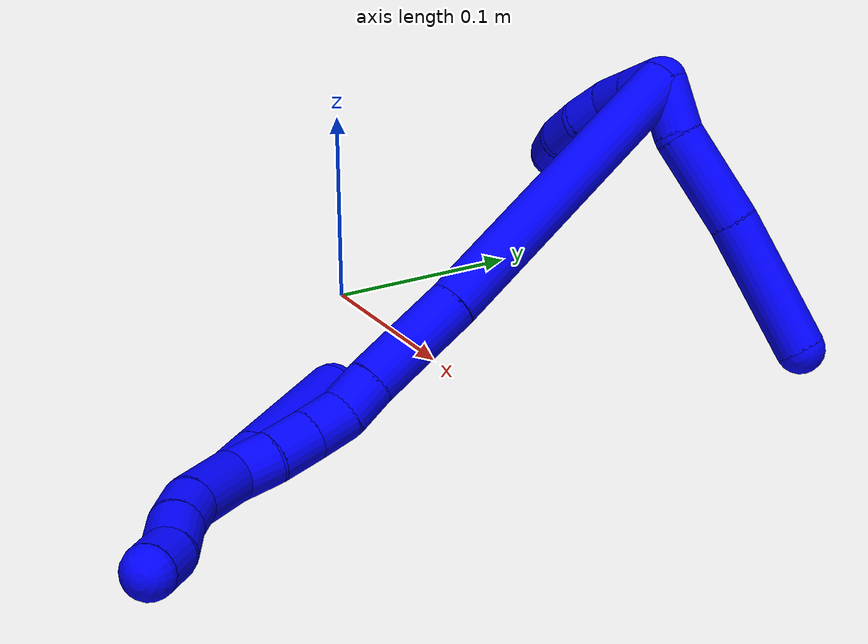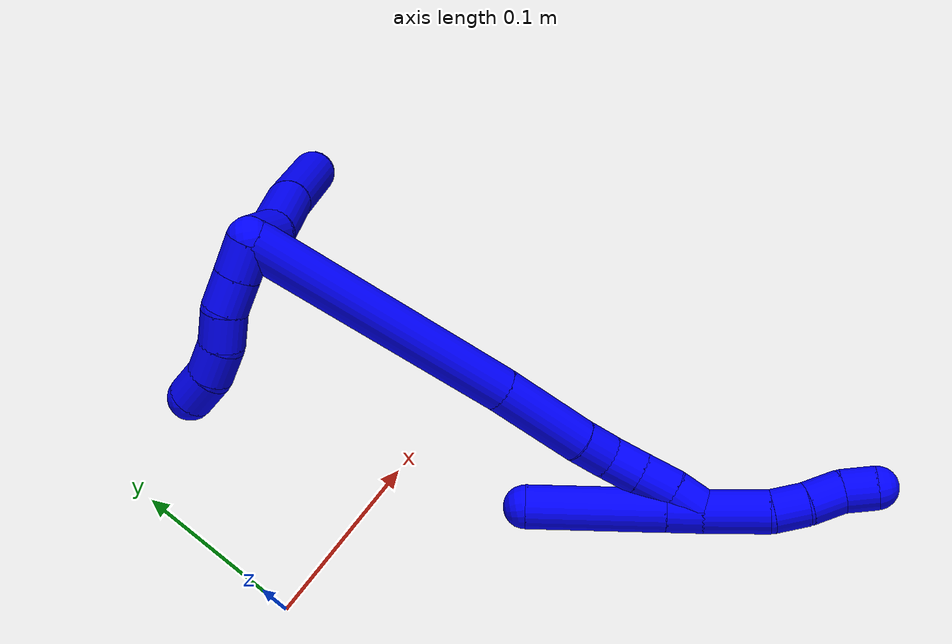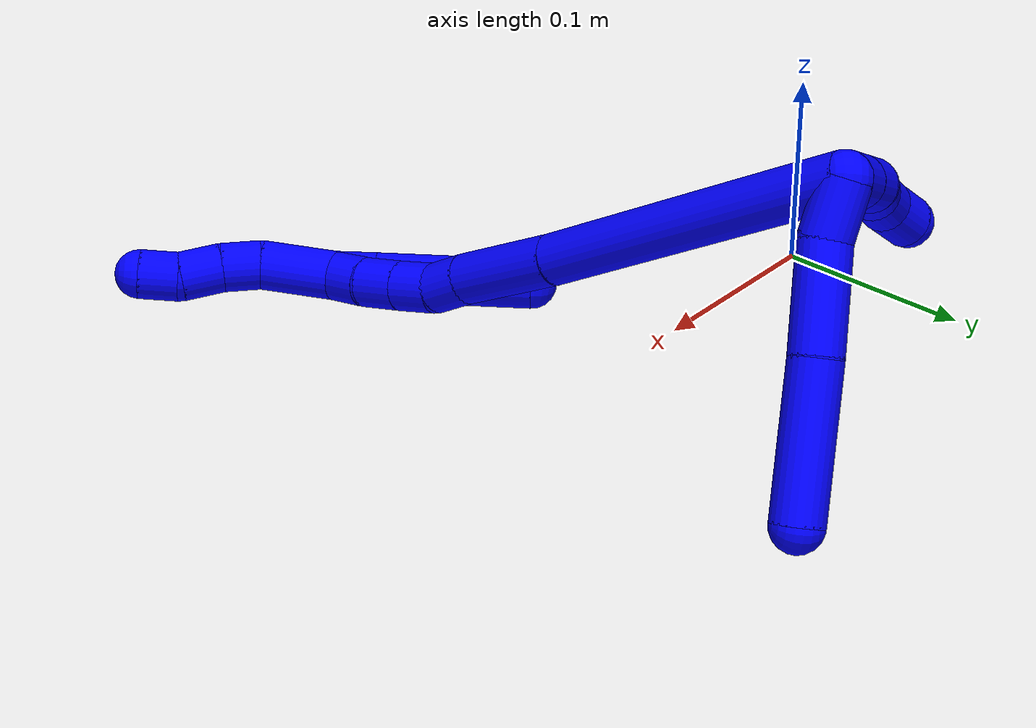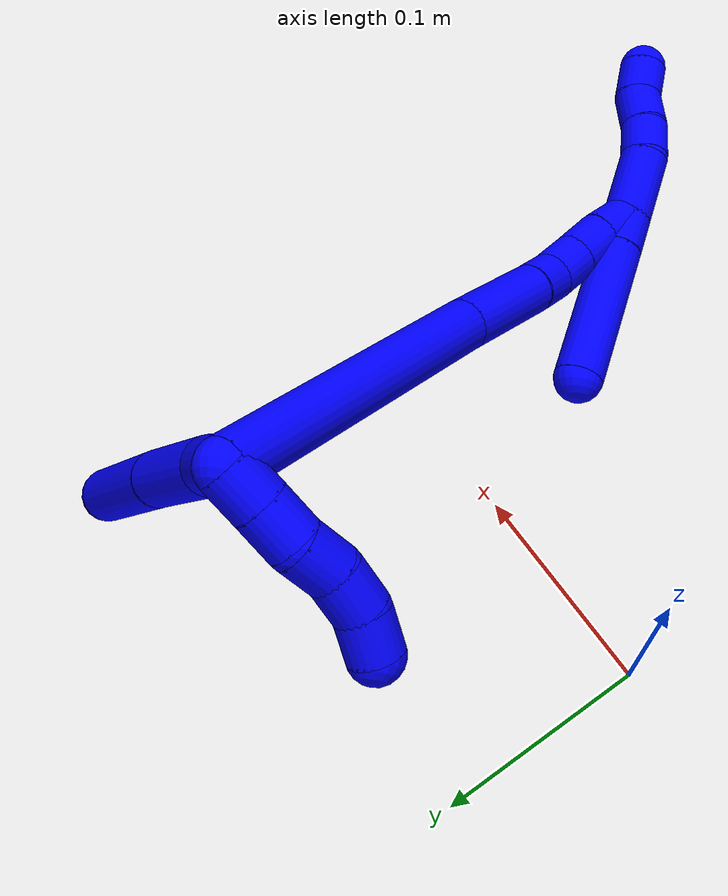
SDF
<sdf version="1.7">
 <world name="default">
  <model name="1">
   <static>0</static>
   <link name="1">
    <collision name="collision-cylinder-e_1_2_8">
     <pose>0.013261 -0.003113 0.002877 0.824707 1.26144 0.618354</pose>
     <geometry><cylinder><radius>0.0125</radius><length>0.027845</length></cylinder></geometry>
     <surface>
      <friction><ode><mu>1.16</mu><mu2>1.16</mu2><slip1>0</slip1><slip2>0</slip2></ode></friction>
      <contact><ode><kp>1e+06</kp><kd>1</kd><max_vel>0</max_vel><min_depth>0.001</min_depth></ode></contact>
     </surface>
    </collision>
    <visual name="visual-cylinder-e_1_2_8">
     <pose>0.013261 -0.003113 0.002877 0.824707 1.26144 0.618354</pose>
     <geometry><cylinder><radius>0.0125</radius><length>0.027845</length></cylinder></geometry>
     <material><ambient>0 0 1 1</ambient></material>
    </visual>
    <collision name="collision-cylinder-e_2_8_9">
     <pose>0.051782 -0.006153 0.006542 -0.09106 1.53947 -0.088254</pose>
     <geometry><cylinder><radius>0.0125</radius><length>0.050542</length></cylinder></geometry>
     <surface>
      <friction><ode><mu>1.16</mu><mu2>1.16</mu2><slip1>0</slip1><slip2>0</slip2></ode></friction>
      <contact><ode><kp>1e+06</kp><kd>1</kd><max_vel>0</max_vel><min_depth>0.001</min_depth></ode></contact>
     </surface>
    </collision>
    <visual name="visual-cylinder-e_2_8_9">
     <pose>0.051782 -0.006153 0.006542 -0.09106 1.53947 -0.088254</pose>
     <geometry><cylinder><radius>0.0125</radius><length>0.050542</length></cylinder></geometry>
     <material><ambient>0 0 1 1</ambient></material>
    </visual>
    <collision name="collision-cylinder-e_3_9_6">
     <pose>0.112717 -0.008671 0.008949 1.01225 1.48542 0.941441</pose>
     <geometry><cylinder><radius>0.0125</radius><length>0.071613</length></cylinder></geometry>
     <surface>
      <friction><ode><mu>1.16</mu><mu2>1.16</mu2><slip1>0</slip1><slip2>0</slip2></ode></friction>
      <contact><ode><kp>1e+06</kp><kd>1</kd><max_vel>0</max_vel><min_depth>0.001</min_depth></ode></contact>
     </surface>
    </collision>
    <visual name="visual-cylinder-e_3_9_6">
     <pose>0.112717 -0.008671 0.008949 1.01225 1.48542 0.941441</pose>
     <geometry><cylinder><radius>0.0125</radius><length>0.071613</length></cylinder></geometry>
     <material><ambient>0 0 1 1</ambient></material>
    </visual>
    <collision name="collision-cylinder-e_1_2_10">
     <pose>-0.000829 -0.00835 -0.00544 2.14825 -0.083003 -0.152934</pose>
     <geometry><cylinder><radius>0.0125</radius><length>0.02</length></cylinder></geometry>
     <surface>
      <friction><ode><mu>1.16</mu><mu2>1.16</mu2><slip1>0</slip1><slip2>0</slip2></ode></friction>
      <contact><ode><kp>1e+06</kp><kd>1</kd><max_vel>0</max_vel><min_depth>0.001</min_depth></ode></contact>
     </surface>
    </collision>
    <visual name="visual-cylinder-e_1_2_10">
     <pose>-0.000829 -0.00835 -0.00544 2.14825 -0.083003 -0.152934</pose>
     <geometry><cylinder><radius>0.0125</radius><length>0.02</length></cylinder></geometry>
     <material><ambient>0 0 1 1</ambient></material>
    </visual>
    <collision name="collision-cylinder-e_2_10_11">
     <pose>-0.002495 -0.024992 -0.016405 2.1585 -0.083751 -0.156207</pose>
     <geometry><cylinder><radius>0.0125</radius><length>0.02</length></cylinder></geometry>
     <surface>
      <friction><ode><mu>1.16</mu><mu2>1.16</mu2><slip1>0</slip1><slip2>0</slip2></ode></friction>
      <contact><ode><kp>1e+06</kp><kd>1</kd><max_vel>0</max_vel><min_depth>0.001</min_depth></ode></contact>
     </surface>
    </collision>
    <visual name="visual-cylinder-e_2_10_11">
     <pose>-0.002495 -0.024992 -0.016405 2.1585 -0.083751 -0.156207</pose>
     <geometry><cylinder><radius>0.0125</radius><length>0.02</length></cylinder></geometry>
     <material><ambient>0 0 1 1</ambient></material>
    </visual>
    <collision name="collision-cylinder-e_3_11_12">
     <pose>-0.002895 -0.042684 -0.025319 1.91683 0.043661 0.062144</pose>
     <geometry><cylinder><radius>0.0125</radius><length>0.02</length></cylinder></geometry>
     <surface>
      <friction><ode><mu>1.16</mu><mu2>1.16</mu2><slip1>0</slip1><slip2>0</slip2></ode></friction>
      <contact><ode><kp>1e+06</kp><kd>1</kd><max_vel>0</max_vel><min_depth>0.001</min_depth></ode></contact>
     </surface>
    </collision>
    <visual name="visual-cylinder-e_3_11_12">
     <pose>-0.002895 -0.042684 -0.025319 1.91683 0.043661 0.062144</pose>
     <geometry><cylinder><radius>0.0125</radius><length>0.02</length></cylinder></geometry>
     <material><ambient>0 0 1 1</ambient></material>
    </visual>
    <collision name="collision-cylinder-e_4_12_13">
     <pose>-0.001266 -0.060259 -0.034339 2.17392 0.119521 0.226738</pose>
     <geometry><cylinder><radius>0.0125</radius><length>0.02</length></cylinder></geometry>
     <surface>
      <friction><ode><mu>1.16</mu><mu2>1.16</mu2><slip1>0</slip1><slip2>0</slip2></ode></friction>
      <contact><ode><kp>1e+06</kp><kd>1</kd><max_vel>0</max_vel><min_depth>0.001</min_depth></ode></contact>
     </surface>
    </collision>
    <visual name="visual-cylinder-e_4_12_13">
     <pose>-0.001266 -0.060259 -0.034339 2.17392 0.119521 0.226738</pose>
     <geometry><cylinder><radius>0.0125</radius><length>0.02</length></cylinder></geometry>
     <material><ambient>0 0 1 1</ambient></material>
    </visual>
    <collision name="collision-cylinder-e_5_13_5">
     <pose>0.002262 -0.074625 -0.04747 2.4516 0.235685 0.636484</pose>
     <geometry><cylinder><radius>0.0125</radius><length>0.02</length></cylinder></geometry>
     <surface>
      <friction><ode><mu>1.16</mu><mu2>1.16</mu2><slip1>0</slip1><slip2>0</slip2></ode></friction>
      <contact><ode><kp>1e+06</kp><kd>1</kd><max_vel>0</max_vel><min_depth>0.001</min_depth></ode></contact>
     </surface>
    </collision>
    <visual name="visual-cylinder-e_5_13_5">
     <pose>0.002262 -0.074625 -0.04747 2.4516 0.235685 0.636484</pose>
     <geometry><cylinder><radius>0.0125</radius><length>0.02</length></cylinder></geometry>
     <material><ambient>0 0 1 1</ambient></material>
    </visual>
    <collision name="collision-cylinder-e_1_2_14">
     <pose>0.015512 -0.059479 0.052406 0.84853 0.193234 0.0875</pose>
     <geometry><cylinder><radius>0.0125</radius><length>0.161552</length></cylinder></geometry>
     <surface>
      <friction><ode><mu>1.16</mu><mu2>1.16</mu2><slip1>0</slip1><slip2>0</slip2></ode></friction>
      <contact><ode><kp>1e+06</kp><kd>1</kd><max_vel>0</max_vel><min_depth>0.001</min_depth></ode></contact>
     </surface>
    </collision>
    <visual name="visual-cylinder-e_1_2_14">
     <pose>0.015512 -0.059479 0.052406 0.84853 0.193234 0.0875</pose>
     <geometry><cylinder><radius>0.0125</radius><length>0.161552</length></cylinder></geometry>
     <material><ambient>0 0 1 1</ambient></material>
    </visual>
    <collision name="collision-cylinder-e_2_14_15">
     <pose>0.034984 -0.139911 0.122508 0.869474 0.143432 0.066695</pose>
     <geometry><cylinder><radius>0.0125</radius><length>0.055419</length></cylinder></geometry>
     <surface>
      <friction><ode><mu>1.16</mu><mu2>1.16</mu2><slip1>0</slip1><slip2>0</slip2></ode></friction>
      <contact><ode><kp>1e+06</kp><kd>1</kd><max_vel>0</max_vel><min_depth>0.001</min_depth></ode></contact>
     </surface>
    </collision>
    <visual name="visual-cylinder-e_2_14_15">
     <pose>0.034984 -0.139911 0.122508 0.869474 0.143432 0.066695</pose>
     <geometry><cylinder><radius>0.0125</radius><length>0.055419</length></cylinder></geometry>
     <material><ambient>0 0 1 1</ambient></material>
    </visual>
    <collision name="collision-cylinder-e_3_15_16">
     <pose>0.041139 -0.168295 0.146836 0.842132 0.216742 0.097373</pose>
     <geometry><cylinder><radius>0.0125</radius><length>0.020399</length></cylinder></geometry>
     <surface>
      <friction><ode><mu>1.16</mu><mu2>1.16</mu2><slip1>0</slip1><slip2>0</slip2></ode></friction>
      <contact><ode><kp>1e+06</kp><kd>1</kd><max_vel>0</max_vel><min_depth>0.001</min_depth></ode></contact>
     </surface>
    </collision>
    <visual name="visual-cylinder-e_3_15_16">
     <pose>0.041139 -0.168295 0.146836 0.842132 0.216742 0.097373</pose>
     <geometry><cylinder><radius>0.0125</radius><length>0.020399</length></cylinder></geometry>
     <material><ambient>0 0 1 1</ambient></material>
    </visual>
    <collision name="collision-cylinder-e_4_16_17">
     <pose>0.042715 -0.182274 0.161284 0.697366 -0.060461 -0.021986</pose>
     <geometry><cylinder><radius>0.0125</radius><length>0.020429</length></cylinder></geometry>
     <surface>
      <friction><ode><mu>1.16</mu><mu2>1.16</mu2><slip1>0</slip1><slip2>0</slip2></ode></friction>
      <contact><ode><kp>1e+06</kp><kd>1</kd><max_vel>0</max_vel><min_depth>0.001</min_depth></ode></contact>
     </surface>
    </collision>
    <visual name="visual-cylinder-e_4_16_17">
     <pose>0.042715 -0.182274 0.161284 0.697366 -0.060461 -0.021986</pose>
     <geometry><cylinder><radius>0.0125</radius><length>0.020429</length></cylinder></geometry>
     <material><ambient>0 0 1 1</ambient></material>
    </visual>
    <collision name="collision-cylinder-e_5_17_18">
     <pose>0.041174 -0.195551 0.177495 0.675667 -0.085612 -0.030092</pose>
     <geometry><cylinder><radius>0.0125</radius><length>0.021599</length></cylinder></geometry>
     <surface>
      <friction><ode><mu>1.16</mu><mu2>1.16</mu2><slip1>0</slip1><slip2>0</slip2></ode></friction>
      <contact><ode><kp>1e+06</kp><kd>1</kd><max_vel>0</max_vel><min_depth>0.001</min_depth></ode></contact>
     </surface>
    </collision>
    <visual name="visual-cylinder-e_5_17_18">
     <pose>0.041174 -0.195551 0.177495 0.675667 -0.085612 -0.030092</pose>
     <geometry><cylinder><radius>0.0125</radius><length>0.021599</length></cylinder></geometry>
     <material><ambient>0 0 1 1</ambient></material>
    </visual>
    <collision name="collision-cylinder-e_6_18_1">
     <pose>0.038522 -0.209396 0.193136 0.776357 -0.168634 -0.069095</pose>
     <geometry><cylinder><radius>0.0125</radius><length>0.020601</length></cylinder></geometry>
     <surface>
      <friction><ode><mu>1.16</mu><mu2>1.16</mu2><slip1>0</slip1><slip2>0</slip2></ode></friction>
      <contact><ode><kp>1e+06</kp><kd>1</kd><max_vel>0</max_vel><min_depth>0.001</min_depth></ode></contact>
     </surface>
    </collision>
    <visual name="visual-cylinder-e_6_18_1">
     <pose>0.038522 -0.209396 0.193136 0.776357 -0.168634 -0.069095</pose>
     <geometry><cylinder><radius>0.0125</radius><length>0.020601</length></cylinder></geometry>
     <material><ambient>0 0 1 1</ambient></material>
    </visual>
    <collision name="collision-cylinder-e_1_1_19">
     <pose>0.036603 -0.214112 0.190104 -2.91226 -0.017981 0.155813</pose>
     <geometry><cylinder><radius>0.0125</radius><length>0.02111</length></cylinder></geometry>
     <surface>
      <friction><ode><mu>1.16</mu><mu2>1.16</mu2><slip1>0</slip1><slip2>0</slip2></ode></friction>
      <contact><ode><kp>1e+06</kp><kd>1</kd><max_vel>0</max_vel><min_depth>0.001</min_depth></ode></contact>
     </surface>
    </collision>
    <visual name="visual-cylinder-e_1_1_19">
     <pose>0.036603 -0.214112 0.190104 -2.91226 -0.017981 0.155813</pose>
     <geometry><cylinder><radius>0.0125</radius><length>0.02111</length></cylinder></geometry>
     <material><ambient>0 0 1 1</ambient></material>
    </visual>
    <collision name="collision-cylinder-e_2_19_4">
     <pose>0.036031 -0.202897 0.141382 -2.91617 -0.009689 0.08555</pose>
     <geometry><cylinder><radius>0.0125</radius><length>0.07889</length></cylinder></geometry>
     <surface>
      <friction><ode><mu>1.16</mu><mu2>1.16</mu2><slip1>0</slip1><slip2>0</slip2></ode></friction>
      <contact><ode><kp>1e+06</kp><kd>1</kd><max_vel>0</max_vel><min_depth>0.001</min_depth></ode></contact>
     </surface>
    </collision>
    <visual name="visual-cylinder-e_2_19_4">
     <pose>0.036031 -0.202897 0.141382 -2.91617 -0.009689 0.08555</pose>
     <geometry><cylinder><radius>0.0125</radius><length>0.07889</length></cylinder></geometry>
     <material><ambient>0 0 1 1</ambient></material>
    </visual>
    <collision name="collision-cylinder-e_1_1_20">
     <pose>0.035162 -0.219349 0.219166 0.149931 -0.08565 -0.006437</pose>
     <geometry><cylinder><radius>0.0125</radius><length>0.038136</length></cylinder></geometry>
     <surface>
      <friction><ode><mu>1.16</mu><mu2>1.16</mu2><slip1>0</slip1><slip2>0</slip2></ode></friction>
      <contact><ode><kp>1e+06</kp><kd>1</kd><max_vel>0</max_vel><min_depth>0.001</min_depth></ode></contact>
     </surface>
    </collision>
    <visual name="visual-cylinder-e_1_1_20">
     <pose>0.035162 -0.219349 0.219166 0.149931 -0.08565 -0.006437</pose>
     <geometry><cylinder><radius>0.0125</radius><length>0.038136</length></cylinder></geometry>
     <material><ambient>0 0 1 1</ambient></material>
    </visual>
    <collision name="collision-cylinder-e_2_20_21">
     <pose>0.034996 -0.222496 0.247913 0.031114 0.146009 0.002276</pose>
     <geometry><cylinder><radius>0.0125</radius><length>0.020148</length></cylinder></geometry>
     <surface>
      <friction><ode><mu>1.16</mu><mu2>1.16</mu2><slip1>0</slip1><slip2>0</slip2></ode></friction>
      <contact><ode><kp>1e+06</kp><kd>1</kd><max_vel>0</max_vel><min_depth>0.001</min_depth></ode></contact>
     </surface>
    </collision>
    <visual name="visual-cylinder-e_2_20_21">
     <pose>0.034996 -0.222496 0.247913 0.031114 0.146009 0.002276</pose>
     <geometry><cylinder><radius>0.0125</radius><length>0.020148</length></cylinder></geometry>
     <material><ambient>0 0 1 1</ambient></material>
    </visual>
    <collision name="collision-cylinder-e_3_21_22">
     <pose>0.039646 -0.222348 0.268209 -0.044325 0.298632 -0.006669</pose>
     <geometry><cylinder><radius>0.0125</radius><length>0.021647</length></cylinder></geometry>
     <surface>
      <friction><ode><mu>1.16</mu><mu2>1.16</mu2><slip1>0</slip1><slip2>0</slip2></ode></friction>
      <contact><ode><kp>1e+06</kp><kd>1</kd><max_vel>0</max_vel><min_depth>0.001</min_depth></ode></contact>
     </surface>
    </collision>
    <visual name="visual-cylinder-e_3_21_22">
     <pose>0.039646 -0.222348 0.268209 -0.044325 0.298632 -0.006669</pose>
     <geometry><cylinder><radius>0.0125</radius><length>0.021647</length></cylinder></geometry>
     <material><ambient>0 0 1 1</ambient></material>
    </visual>
    <collision name="collision-cylinder-e_4_22_3">
     <pose>0.042789 -0.222651 0.288549 0.075906 -0.004134 -0.000157</pose>
     <geometry><cylinder><radius>0.0125</radius><length>0.020069</length></cylinder></geometry>
     <surface>
      <friction><ode><mu>1.16</mu><mu2>1.16</mu2><slip1>0</slip1><slip2>0</slip2></ode></friction>
      <contact><ode><kp>1e+06</kp><kd>1</kd><max_vel>0</max_vel><min_depth>0.001</min_depth></ode></contact>
     </surface>
    </collision>
    <visual name="visual-cylinder-e_4_22_3">
     <pose>0.042789 -0.222651 0.288549 0.075906 -0.004134 -0.000157</pose>
     <geometry><cylinder><radius>0.0125</radius><length>0.020069</length></cylinder></geometry>
     <material><ambient>0 0 1 1</ambient></material>
    </visual>
    <collision name="collision-sphere-3">
     <pose>0.042748 -0.223412 0.298555 0 -0 0</pose>
     <geometry><sphere><radius>0.0125</radius></sphere></geometry>
     <surface>
      <friction><ode><mu>1.16</mu><mu2>1.16</mu2><slip1>0</slip1><slip2>0</slip2></ode></friction>
      <contact><ode><kp>1e+06</kp><kd>1</kd><max_vel>0</max_vel><min_depth>0.001</min_depth></ode></contact>
     </surface>
    </collision>
    <visual name="visual-sphere-3">
     <pose>0.042748 -0.223412 0.298555 0 -0 0</pose>
     <geometry><sphere><radius>0.0125</radius></sphere></geometry>
     <material><ambient>0 0 1 1</ambient></material>
    </visual>
    <collision name="collision-sphere-22">
     <pose>0.042831 -0.22189 0.278544 0 -0 0</pose>
     <geometry><sphere><radius>0.0125</radius></sphere></geometry>
     <surface>
      <friction><ode><mu>1.16</mu><mu2>1.16</mu2><slip1>0</slip1><slip2>0</slip2></ode></friction>
      <contact><ode><kp>1e+06</kp><kd>1</kd><max_vel>0</max_vel><min_depth>0.001</min_depth></ode></contact>
     </surface>
    </collision>
    <visual name="visual-sphere-22">
     <pose>0.042831 -0.22189 0.278544 0 -0 0</pose>
     <geometry><sphere><radius>0.0125</radius></sphere></geometry>
     <material><ambient>0 0 1 1</ambient></material>
    </visual>
    <collision name="collision-sphere-21">
     <pose>0.036462 -0.222806 0.257875 0 -0 0</pose>
     <geometry><sphere><radius>0.0125</radius></sphere></geometry>
     <surface>
      <friction><ode><mu>1.16</mu><mu2>1.16</mu2><slip1>0</slip1><slip2>0</slip2></ode></friction>
      <contact><ode><kp>1e+06</kp><kd>1</kd><max_vel>0</max_vel><min_depth>0.001</min_depth></ode></contact>
     </surface>
    </collision>
    <visual name="visual-sphere-21">
     <pose>0.036462 -0.222806 0.257875 0 -0 0</pose>
     <geometry><sphere><radius>0.0125</radius></sphere></geometry>
     <material><ambient>0 0 1 1</ambient></material>
    </visual>
    <collision name="collision-sphere-20">
     <pose>0.033531 -0.222186 0.237951 0 -0 0</pose>
     <geometry><sphere><radius>0.0125</radius></sphere></geometry>
     <surface>
      <friction><ode><mu>1.16</mu><mu2>1.16</mu2><slip1>0</slip1><slip2>0</slip2></ode></friction>
      <contact><ode><kp>1e+06</kp><kd>1</kd><max_vel>0</max_vel><min_depth>0.001</min_depth></ode></contact>
     </surface>
    </collision>
    <visual name="visual-sphere-20">
     <pose>0.033531 -0.222186 0.237951 0 -0 0</pose>
     <geometry><sphere><radius>0.0125</radius></sphere></geometry>
     <material><ambient>0 0 1 1</ambient></material>
    </visual>
    <collision name="collision-sphere-4">
     <pose>0.035649 -0.19408 0.102937 0 -0 0</pose>
     <geometry><sphere><radius>0.0125</radius></sphere></geometry>
     <surface>
      <friction><ode><mu>1.16</mu><mu2>1.16</mu2><slip1>0</slip1><slip2>0</slip2></ode></friction>
      <contact><ode><kp>1e+06</kp><kd>1</kd><max_vel>0</max_vel><min_depth>0.001</min_depth></ode></contact>
     </surface>
    </collision>
    <visual name="visual-sphere-4">
     <pose>0.035649 -0.19408 0.102937 0 -0 0</pose>
     <geometry><sphere><radius>0.0125</radius></sphere></geometry>
     <material><ambient>0 0 1 1</ambient></material>
    </visual>
    <collision name="collision-sphere-11">
     <pose>-0.003331 -0.033285 -0.02193 0 -0 0</pose>
     <geometry><sphere><radius>0.0125</radius></sphere></geometry>
     <surface>
      <friction><ode><mu>1.16</mu><mu2>1.16</mu2><slip1>0</slip1><slip2>0</slip2></ode></friction>
      <contact><ode><kp>1e+06</kp><kd>1</kd><max_vel>0</max_vel><min_depth>0.001</min_depth></ode></contact>
     </surface>
    </collision>
    <visual name="visual-sphere-11">
     <pose>-0.003331 -0.033285 -0.02193 0 -0 0</pose>
     <geometry><sphere><radius>0.0125</radius></sphere></geometry>
     <material><ambient>0 0 1 1</ambient></material>
    </visual>
    <collision name="collision-sphere-10">
     <pose>-0.001658 -0.016699 -0.01088 0 -0 0</pose>
     <geometry><sphere><radius>0.0125</radius></sphere></geometry>
     <surface>
      <friction><ode><mu>1.16</mu><mu2>1.16</mu2><slip1>0</slip1><slip2>0</slip2></ode></friction>
      <contact><ode><kp>1e+06</kp><kd>1</kd><max_vel>0</max_vel><min_depth>0.001</min_depth></ode></contact>
     </surface>
    </collision>
    <visual name="visual-sphere-10">
     <pose>-0.001658 -0.016699 -0.01088 0 -0 0</pose>
     <geometry><sphere><radius>0.0125</radius></sphere></geometry>
     <material><ambient>0 0 1 1</ambient></material>
    </visual>
    <collision name="collision-sphere-6">
     <pose>0.148393 -0.01126 0.010567 0 -0 0</pose>
     <geometry><sphere><radius>0.0125</radius></sphere></geometry>
     <surface>
      <friction><ode><mu>1.16</mu><mu2>1.16</mu2><slip1>0</slip1><slip2>0</slip2></ode></friction>
      <contact><ode><kp>1e+06</kp><kd>1</kd><max_vel>0</max_vel><min_depth>0.001</min_depth></ode></contact>
     </surface>
    </collision>
    <visual name="visual-sphere-6">
     <pose>0.148393 -0.01126 0.010567 0 -0 0</pose>
     <geometry><sphere><radius>0.0125</radius></sphere></geometry>
     <material><ambient>0 0 1 1</ambient></material>
    </visual>
    <collision name="collision-sphere-9">
     <pose>0.07704 -0.006081 0.007331 0 -0 0</pose>
     <geometry><sphere><radius>0.0125</radius></sphere></geometry>
     <surface>
      <friction><ode><mu>1.16</mu><mu2>1.16</mu2><slip1>0</slip1><slip2>0</slip2></ode></friction>
      <contact><ode><kp>1e+06</kp><kd>1</kd><max_vel>0</max_vel><min_depth>0.001</min_depth></ode></contact>
     </surface>
    </collision>
    <visual name="visual-sphere-9">
     <pose>0.07704 -0.006081 0.007331 0 -0 0</pose>
     <geometry><sphere><radius>0.0125</radius></sphere></geometry>
     <material><ambient>0 0 1 1</ambient></material>
    </visual>
    <collision name="collision-sphere-2">
     <geometry><sphere><radius>0.0125</radius></sphere></geometry>
     <surface>
      <friction><ode><mu>1.16</mu><mu2>1.16</mu2><slip1>0</slip1><slip2>0</slip2></ode></friction>
      <contact><ode><kp>1e+06</kp><kd>1</kd><max_vel>0</max_vel><min_depth>0.001</min_depth></ode></contact>
     </surface>
    </collision>
    <visual name="visual-sphere-2">
     <geometry><sphere><radius>0.0125</radius></sphere></geometry>
     <material><ambient>0 0 1 1</ambient></material>
    </visual>
    <collision name="collision-sphere-19">
     <pose>0.036413 -0.211713 0.179827 0 -0 0</pose>
     <geometry><sphere><radius>0.0125</radius></sphere></geometry>
     <surface>
      <friction><ode><mu>1.16</mu><mu2>1.16</mu2><slip1>0</slip1><slip2>0</slip2></ode></friction>
      <contact><ode><kp>1e+06</kp><kd>1</kd><max_vel>0</max_vel><min_depth>0.001</min_depth></ode></contact>
     </surface>
    </collision>
    <visual name="visual-sphere-19">
     <pose>0.036413 -0.211713 0.179827 0 -0 0</pose>
     <geometry><sphere><radius>0.0125</radius></sphere></geometry>
     <material><ambient>0 0 1 1</ambient></material>
    </visual>
    <collision name="collision-sphere-8">
     <pose>0.026523 -0.006225 0.005754 0 -0 0</pose>
     <geometry><sphere><radius>0.0125</radius></sphere></geometry>
     <surface>
      <friction><ode><mu>1.16</mu><mu2>1.16</mu2><slip1>0</slip1><slip2>0</slip2></ode></friction>
      <contact><ode><kp>1e+06</kp><kd>1</kd><max_vel>0</max_vel><min_depth>0.001</min_depth></ode></contact>
     </surface>
    </collision>
    <visual name="visual-sphere-8">
     <pose>0.026523 -0.006225 0.005754 0 -0 0</pose>
     <geometry><sphere><radius>0.0125</radius></sphere></geometry>
     <material><ambient>0 0 1 1</ambient></material>
    </visual>
    <collision name="collision-sphere-12">
     <pose>-0.002458 -0.052082 -0.028707 0 -0 0</pose>
     <geometry><sphere><radius>0.0125</radius></sphere></geometry>
     <surface>
      <friction><ode><mu>1.16</mu><mu2>1.16</mu2><slip1>0</slip1><slip2>0</slip2></ode></friction>
      <contact><ode><kp>1e+06</kp><kd>1</kd><max_vel>0</max_vel><min_depth>0.001</min_depth></ode></contact>
     </surface>
    </collision>
    <visual name="visual-sphere-12">
     <pose>-0.002458 -0.052082 -0.028707 0 -0 0</pose>
     <geometry><sphere><radius>0.0125</radius></sphere></geometry>
     <material><ambient>0 0 1 1</ambient></material>
    </visual>
    <collision name="collision-sphere-13">
     <pose>-7.4e-05 -0.068436 -0.039971 0 -0 0</pose>
     <geometry><sphere><radius>0.0125</radius></sphere></geometry>
     <surface>
      <friction><ode><mu>1.16</mu><mu2>1.16</mu2><slip1>0</slip1><slip2>0</slip2></ode></friction>
      <contact><ode><kp>1e+06</kp><kd>1</kd><max_vel>0</max_vel><min_depth>0.001</min_depth></ode></contact>
     </surface>
    </collision>
    <visual name="visual-sphere-13">
     <pose>-7.4e-05 -0.068436 -0.039971 0 -0 0</pose>
     <geometry><sphere><radius>0.0125</radius></sphere></geometry>
     <material><ambient>0 0 1 1</ambient></material>
    </visual>
    <collision name="collision-sphere-5">
     <pose>0.004597 -0.080815 -0.054969 0 -0 0</pose>
     <geometry><sphere><radius>0.0125</radius></sphere></geometry>
     <surface>
      <friction><ode><mu>1.16</mu><mu2>1.16</mu2><slip1>0</slip1><slip2>0</slip2></ode></friction>
      <contact><ode><kp>1e+06</kp><kd>1</kd><max_vel>0</max_vel><min_depth>0.001</min_depth></ode></contact>
     </surface>
    </collision>
    <visual name="visual-sphere-5">
     <pose>0.004597 -0.080815 -0.054969 0 -0 0</pose>
     <geometry><sphere><radius>0.0125</radius></sphere></geometry>
     <material><ambient>0 0 1 1</ambient></material>
    </visual>
    <collision name="collision-sphere-14">
     <pose>0.031023 -0.118958 0.104812 0 -0 0</pose>
     <geometry><sphere><radius>0.0125</radius></sphere></geometry>
     <surface>
      <friction><ode><mu>1.16</mu><mu2>1.16</mu2><slip1>0</slip1><slip2>0</slip2></ode></friction>
      <contact><ode><kp>1e+06</kp><kd>1</kd><max_vel>0</max_vel><min_depth>0.001</min_depth></ode></contact>
     </surface>
    </collision>
    <visual name="visual-sphere-14">
     <pose>0.031023 -0.118958 0.104812 0 -0 0</pose>
     <geometry><sphere><radius>0.0125</radius></sphere></geometry>
     <material><ambient>0 0 1 1</ambient></material>
    </visual>
    <collision name="collision-sphere-15">
     <pose>0.038945 -0.160863 0.140203 0 -0 0</pose>
     <geometry><sphere><radius>0.0125</radius></sphere></geometry>
     <surface>
      <friction><ode><mu>1.16</mu><mu2>1.16</mu2><slip1>0</slip1><slip2>0</slip2></ode></friction>
      <contact><ode><kp>1e+06</kp><kd>1</kd><max_vel>0</max_vel><min_depth>0.001</min_depth></ode></contact>
     </surface>
    </collision>
    <visual name="visual-sphere-15">
     <pose>0.038945 -0.160863 0.140203 0 -0 0</pose>
     <geometry><sphere><radius>0.0125</radius></sphere></geometry>
     <material><ambient>0 0 1 1</ambient></material>
    </visual>
    <collision name="collision-sphere-16">
     <pose>0.043332 -0.175726 0.153469 0 -0 0</pose>
     <geometry><sphere><radius>0.0125</radius></sphere></geometry>
     <surface>
      <friction><ode><mu>1.16</mu><mu2>1.16</mu2><slip1>0</slip1><slip2>0</slip2></ode></friction>
      <contact><ode><kp>1e+06</kp><kd>1</kd><max_vel>0</max_vel><min_depth>0.001</min_depth></ode></contact>
     </surface>
    </collision>
    <visual name="visual-sphere-16">
     <pose>0.043332 -0.175726 0.153469 0 -0 0</pose>
     <geometry><sphere><radius>0.0125</radius></sphere></geometry>
     <material><ambient>0 0 1 1</ambient></material>
    </visual>
    <collision name="collision-sphere-17">
     <pose>0.042098 -0.188822 0.169099 0 -0 0</pose>
     <geometry><sphere><radius>0.0125</radius></sphere></geometry>
     <surface>
      <friction><ode><mu>1.16</mu><mu2>1.16</mu2><slip1>0</slip1><slip2>0</slip2></ode></friction>
      <contact><ode><kp>1e+06</kp><kd>1</kd><max_vel>0</max_vel><min_depth>0.001</min_depth></ode></contact>
     </surface>
    </collision>
    <visual name="visual-sphere-17">
     <pose>0.042098 -0.188822 0.169099 0 -0 0</pose>
     <geometry><sphere><radius>0.0125</radius></sphere></geometry>
     <material><ambient>0 0 1 1</ambient></material>
    </visual>
    <collision name="collision-sphere-18">
     <pose>0.040251 -0.202281 0.185891 0 -0 0</pose>
     <geometry><sphere><radius>0.0125</radius></sphere></geometry>
     <surface>
      <friction><ode><mu>1.16</mu><mu2>1.16</mu2><slip1>0</slip1><slip2>0</slip2></ode></friction>
      <contact><ode><kp>1e+06</kp><kd>1</kd><max_vel>0</max_vel><min_depth>0.001</min_depth></ode></contact>
     </surface>
    </collision>
    <visual name="visual-sphere-18">
     <pose>0.040251 -0.202281 0.185891 0 -0 0</pose>
     <geometry><sphere><radius>0.0125</radius></sphere></geometry>
     <material><ambient>0 0 1 1</ambient></material>
    </visual>
    <collision name="collision-sphere-1">
     <pose>0.036793 -0.216511 0.200381 0 -0 0</pose>
     <geometry><sphere><radius>0.0125</radius></sphere></geometry>
     <surface>
      <friction><ode><mu>1.16</mu><mu2>1.16</mu2><slip1>0</slip1><slip2>0</slip2></ode></friction>
      <contact><ode><kp>1e+06</kp><kd>1</kd><max_vel>0</max_vel><min_depth>0.001</min_depth></ode></contact>
     </surface>
    </collision>
    <visual name="visual-sphere-1">
     <pose>0.036793 -0.216511 0.200381 0 -0 0</pose>
     <geometry><sphere><radius>0.0125</radius></sphere></geometry>
     <material><ambient>0 0 1 1</ambient></material>
    </visual>
    <inertial>
     <pose>0.034896 -0.107933 0.090596 0 -0 0</pose>
     <mass>0.75</mass>
     <inertia>
      <ixx>0.000492</ixx>
      <ixy>0</ixy>
      <ixz>0</ixz>
      <iyy>0.000283</iyy>
      <iyz>0</iyz>
      <izz>0.000172</izz>
     </inertia>
    </inertial>
   </link>
   <pose>0.132482 0.112761 0.137069 1.32882 0.93811 0.617984</pose>
  </model>
 </world>
</sdf>
